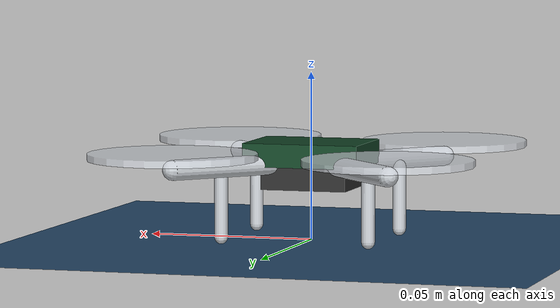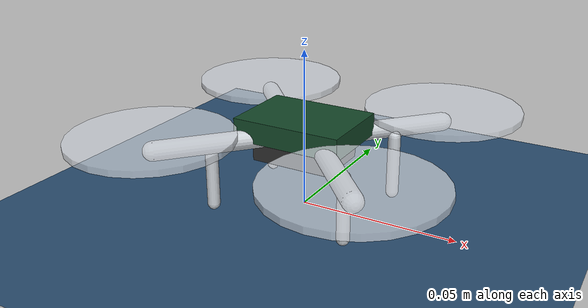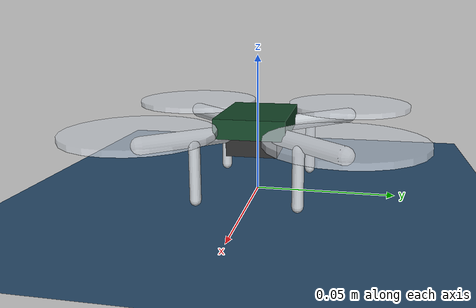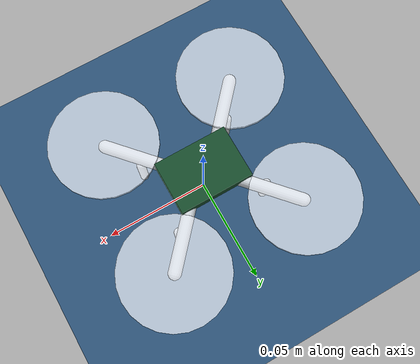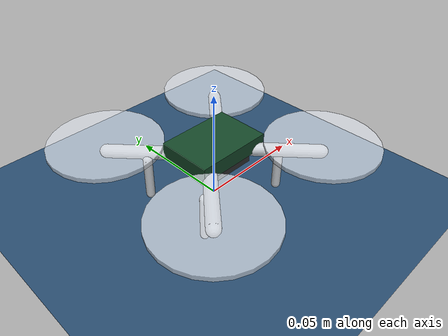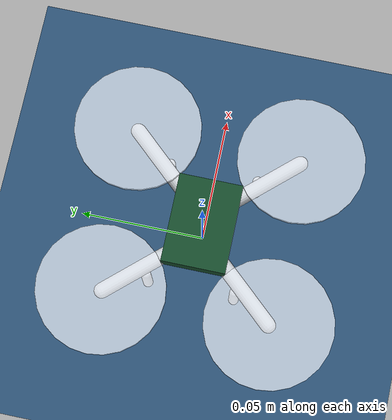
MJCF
<mujoco model="Bitcraze Crazyflie 2 - minimal">
  <compiler angle="degree"/>
  <option timestep="0.01" gravity="0 0 -9.81" integrator="implicitfast"/>

  <visual>
    <headlight ambient="0.35 0.35 0.35" diffuse="0.8 0.8 0.8" specular="0.2 0.2 0.2"/>
    <rgba haze="0.15 0.25 0.35 1"/>
    <global azimuth="135" elevation="-20"/>
  </visual>

  <asset>
    <texture name="grid" type="2d" builtin="checker" width="512" height="512"
             rgb1="0.12 0.22 0.32" rgb2="0.20 0.38 0.55"/>
    <material name="ground" texture="grid" texrepeat="24 24" reflectance="0.15"/>
    <material name="board" rgba="0.08 0.28 0.16 1"/>
    <material name="white" rgba="0.78 0.80 0.82 1"/>
    <material name="rotor" rgba="0.88 0.90 0.93 0.72"/>
  </asset>

  <worldbody>
    <light pos="0 -1 2" dir="0 0 -1"/>
    <geom name="floor" type="plane" size="2 2 0.1" material="ground"/>
    <body name="crazyflie_2" pos="0 0 0.019">
      <joint name="x" type="slide" axis="1 0 0" range="-0.9 0.9"/>
      <joint name="y" type="slide" axis="0 1 0" range="-0.5 0.5"/>
      <joint name="z" type="slide" axis="0 0 1" range="0 1.05"/>

      <geom name="board" type="box" pos="0 0 0.007" size="0.0175 0.0125 0.0035" material="board" mass="0.012"/>
      <geom name="battery" type="box" pos="0 0 0" size="0.013 0.009 0.0035" rgba="0.18 0.18 0.18 1" mass="0.008"/>

      <geom type="capsule" fromto="0.01 0.0075 0.004  0.0325 0.0325 0.004" size="0.003" material="white" mass="0.001"/>
      <geom type="capsule" fromto="0.01 -0.0075 0.004  0.0325 -0.0325 0.004" size="0.003" material="white" mass="0.001"/>
      <geom type="capsule" fromto="-0.01 0.0075 0.004  -0.0325 0.0325 0.004" size="0.003" material="white" mass="0.001"/>
      <geom type="capsule" fromto="-0.01 -0.0075 0.004  -0.0325 -0.0325 0.004" size="0.003" material="white" mass="0.001"/>

      <geom type="cylinder" pos="0.0325 0.0325 0.008" size="0.025 0.001" material="rotor" mass="0.0005"/>
      <geom type="cylinder" pos="0.0325 -0.0325 0.008" size="0.025 0.001" material="rotor" mass="0.0005"/>
      <geom type="cylinder" pos="-0.0325 0.0325 0.008" size="0.025 0.001" material="rotor" mass="0.0005"/>
      <geom type="cylinder" pos="-0.0325 -0.0325 0.008" size="0.025 0.001" material="rotor" mass="0.0005"/>

      <geom type="capsule" fromto="0.0225 0.0175 0.002  0.0225 0.0175 -0.017" size="0.002" material="white" mass="0.0005"/>
      <geom type="capsule" fromto="0.0225 -0.0175 0.002  0.0225 -0.0175 -0.017" size="0.002" material="white" mass="0.0005"/>
      <geom type="capsule" fromto="-0.0225 0.0175 0.002  -0.0225 0.0175 -0.017" size="0.002" material="white" mass="0.0005"/>
      <geom type="capsule" fromto="-0.0225 -0.0175 0.002  -0.0225 -0.0175 -0.017" size="0.002" material="white" mass="0.0005"/>
    </body>
  </worldbody>

  <actuator>
    <motor name="force_x" joint="x" ctrllimited="true" ctrlrange="-10 10"/>
    <motor name="force_y" joint="y" ctrllimited="true" ctrlrange="-10 10"/>
    <motor name="force_z" joint="z" ctrllimited="true" ctrlrange="-10 10"/>
  </actuator>
</mujoco>
